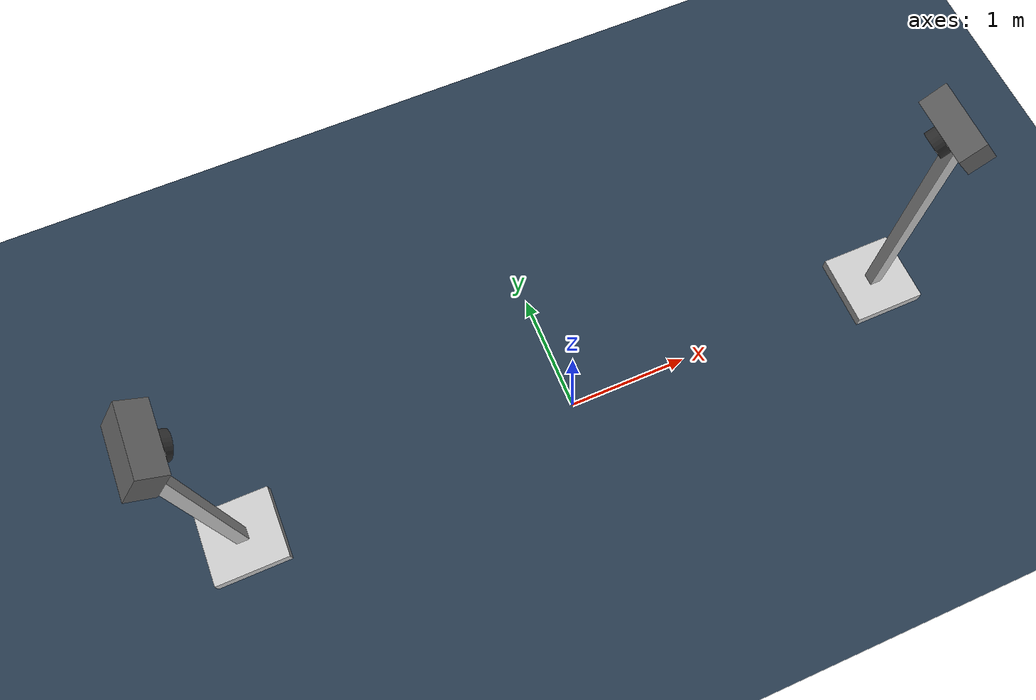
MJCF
<mujoco model="empty_arena">
  <asset>
    <texture name="texplane" type="2d" builtin="checker" rgb1=".2 .3 .4" rgb2=".1 0.15 0.2"
                width="512" height="512"/>
    <material name="MatGnd" reflectance="0.0" texture="texplane" texrepeat="1 1" texuniform="true"/>
    <texture type="skybox" builtin="gradient" rgb1="1 1 1" rgb2=".6 .8 1" width="256" height="256"/>
  </asset>

  <worldbody>
    <light directional="false" diffuse=".8 .8 .8" specular="0.3 0.3 0.3" pos="1  1 3" dir="-1 -1 -3"/>
    <geom name="ground" pos="0 0 0" size="5 5 10" material="MatGnd" type="plane" contype="1" conaffinity="1"/>
    <light diffuse=".8 .8 .8" dir="0 -.15 -1" directional="false" pos="1 1 4.0" specular="0.3 0.3 0.3" castshadow="false"/>
    <light diffuse=".8 .8 .8" dir="0 -.15 -1" directional="false" pos="-3. -3. 4.0" specular="0.3 0.3 0.3" castshadow="false"/>

    <!-- Standing cam body -->
    <body name="stand" pos="2.8 0.0 0.0">
      <geom type="box" pos="0.0 0.0 0.05" size="0.3 0.3 0.05" name="stand_floor" rgba="0.78 0.78 0.78 1"/>
      <geom type="box" pos="0.0 0.0 1.2" size="0.05 0.05 1.1" name="stand_pillar" rgba="0.78 0.78 0.78 1"/>
        <body name="cam" pos="1.43 0.0 0.2" quat="0.9537 0.0 -0.3007 0.0">
            <geom type="box" pos="0.0 0.0 2.65" size="0.1 0.25 0.15" name="cam_body" rgba="0.38 0.38 0.38 1"/>
            <geom type="cylinder" pos="-0.14 0.0 2.65" quat="0.7071 0 0.7071 0" size="0.1 0.04" name="cam_lens" rgba="0.18 0.18 0.18 1"/>
        </body>
    </body>

    <!-- standing cam view -->
    <camera pos="2.55 0.0 2.25" name="standing_cam" xyaxes="0.000 1.000 0.000 -0.62 0.000 0.78"/>

    <!-- Standing cam body (Mirrored Version) -->
    <body name="stand2" pos="-2.8 0.0 0.0">
      <geom type="box" pos="0.0 0.0 0.05" size="0.3 0.3 0.05" name="stand_floor2" rgba="0.78 0.78 0.78 1"/>
      <geom type="box" pos="0.0 0.0 1.2" size="0.05 0.05 1.1" name="stand_pillar2" rgba="0.78 0.78 0.78 1"/>
      <body name="cam2" pos="-1.43 0.0 0.2" quat="0.9537 0.0 0.3007 0.0">
        <geom type="box" pos="0.0 0.0 2.65" size="0.1 0.25 0.15" name="cam_body2" rgba="0.38 0.38 0.38 1"/>
        <geom type="cylinder" pos="0.14 0.0 2.65" quat="0.7071 0 0.7071 0" size="0.1 0.04" name="cam_lens2" rgba="0.18 0.18 0.18 1"/>
      </body>
    </body>

    <!-- Standing cam view (Mirrored Version) -->
    <camera pos="-2.55 0 2.25" name="standing_cam2" fovy="45" xyaxes="0.000 -1.000 -0.000 0.618 0.000 0.786"/>

    <!-- overhead cameras -->
    <camera name="overhead_cam" pos="-0.8 0.0 2" fovy="50"/>
    <light name="overhead_light" pos="-0.8 0 2.0" dir="0 0 -1" diffuse="0.8 0.8 0.8" specular="0.2 0.2 0.2" />
    <camera name="overhead_cam2" pos="0.8 0.0 2" fovy="50"/>
    <light name="overhead_light2" pos="0.8 0 2.0" dir="0 0 -1" diffuse="0.8 0.8 0.8" specular="0.2 0.2 0.2" />

    <!-- iso cameras -->
    <camera pos="2.55 1.0 2.5" name="iso_cam1" xyaxes="-0.500 1.000 0.000 -0.62 0.000 0.78"/>
    <camera pos="-2.55 -1.0 2.5" name="iso_cam2" xyaxes="0.500 -1.000 0.000 0.62 0.000 0.78"/>

  </worldbody>
</mujoco>
